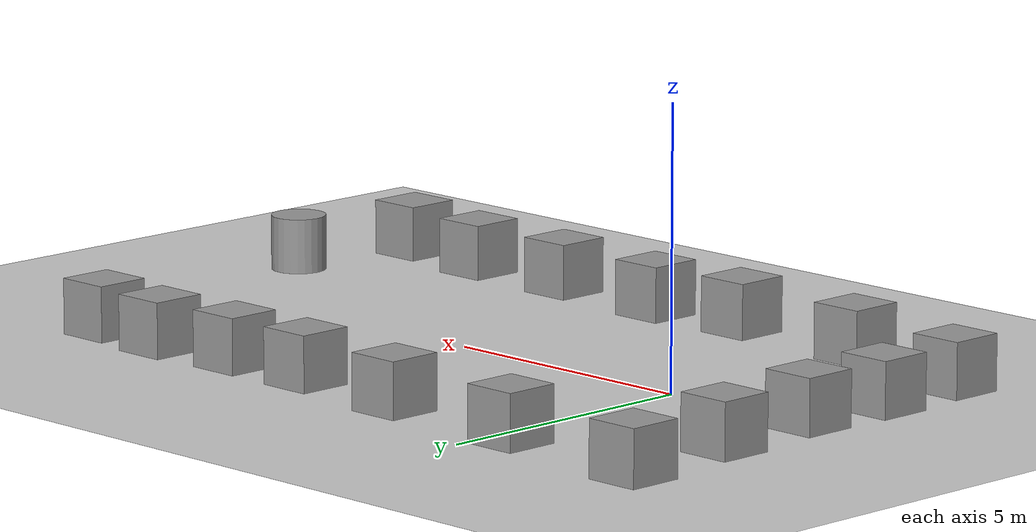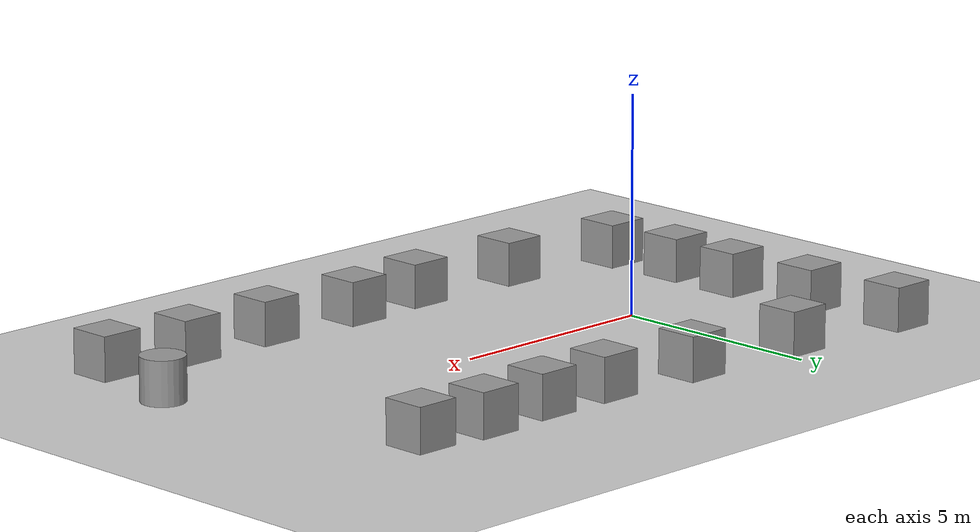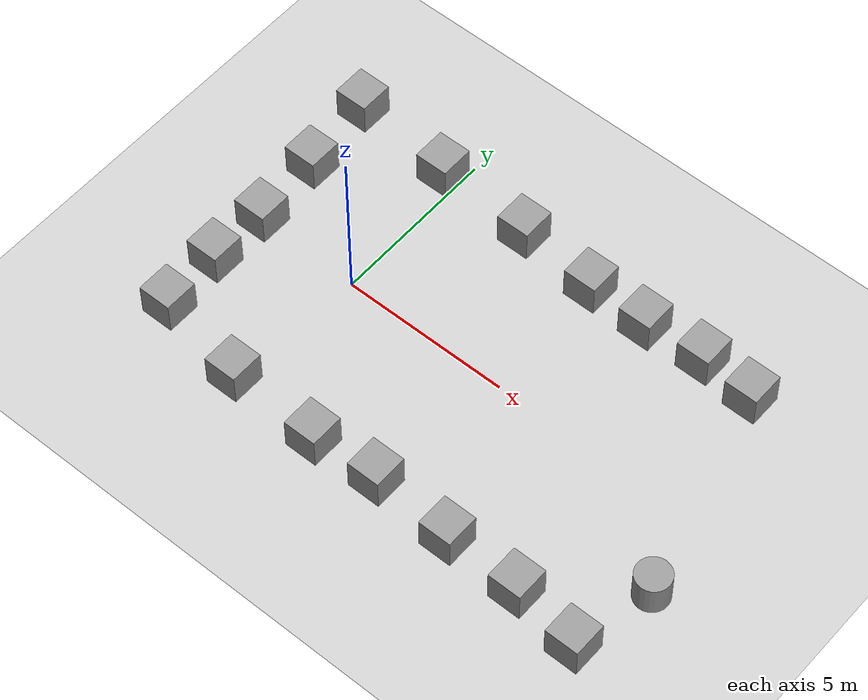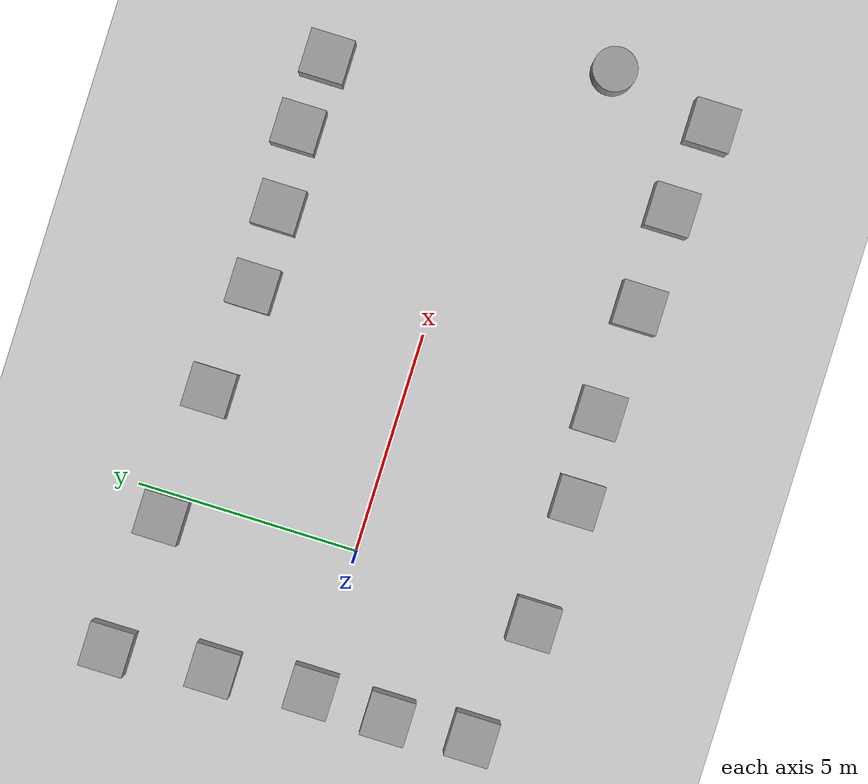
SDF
<sdf version="1.7">
 <world name="default">
  <light name="sun" type="directional">
   <pose>0 0 10 0 -0 0</pose>
   <diffuse>0.8 0.8 0.8 1</diffuse>
   <specular>0.2 0.2 0.2 1</specular>
   <attenuation>
    <range>1000</range>
    <constant>0.9</constant>
    <linear>0.01</linear>
    <quadratic>0.001</quadratic>
   </attenuation>
   <direction>-0.5 0.1 -0.9</direction>
   <spot><inner_angle>0</inner_angle><outer_angle>0</outer_angle><falloff>0</falloff></spot>
  </light>
  <model name="ground_plane">
   <static>1</static>
   <link name="link">
    <collision name="collision">
     <geometry><plane><normal>0 0 1</normal><size>100 100</size></plane></geometry>
     <surface>
      <contact><collide_bitmask>65535</collide_bitmask></contact>
      <friction><ode><mu>100</mu><mu2>50</mu2></ode></friction>
     </surface>
    </collision>
    <visual name="visual">
     <cast_shadows>0</cast_shadows>
     <geometry><plane><normal>0 0 1</normal><size>100 100</size></plane></geometry>
     <material>
      <script><uri>file://media/materials/scripts/gazebo.material</uri><name>Gazebo/Grey</name></script>
     </material>
    </visual>
   </link>
  </model>
  <gravity>0 0 -9.8</gravity>
  <magnetic_field>6e-06 2.3e-05 -4.2e-05</magnetic_field>
  <atmosphere type="adiabatic"/>
  <physics type="ode">
   <max_step_size>0.001</max_step_size>
   <real_time_factor>1</real_time_factor>
   <real_time_update_rate>1000</real_time_update_rate>
  </physics>
  <scene><ambient>0.4 0.4 0.4 1</ambient><background>0.7 0.7 0.7 1</background><shadows>1</shadows></scene>
  <spherical_coordinates>
   <surface_model>EARTH_WGS84</surface_model>
   <latitude_deg>0</latitude_deg>
   <longitude_deg>0</longitude_deg>
   <elevation>0</elevation>
   <heading_deg>0</heading_deg>
  </spherical_coordinates>
  <model name="unit_box_0">
   <pose>2.48487 -4.28376 0.499995 0 1e-05 0</pose>
   <link name="link">
    <inertial>
     <mass>1</mass>
     <inertia>
      <ixx>0.166667</ixx>
      <ixy>0</ixy>
      <ixz>0</ixz>
      <iyy>0.166667</iyy>
      <iyz>0</iyz>
      <izz>0.166667</izz>
     </inertia>
    </inertial>
    <collision name="collision"><geometry><box><size>1 1 1</size></box></geometry></collision>
    <visual name="visual">
     <geometry><box><size>1 1 1</size></box></geometry>
     <material>
      <script><name>Gazebo/Grey</name><uri>file://media/materials/scripts/gazebo.material</uri></script>
     </material>
    </visual>
   </link>
  </model>
  <model name="unit_box_1">
   <pose>4.48088 -4.17094 0.499995 -1e-05 0 0</pose>
   <link name="link">
    <inertial>
     <mass>1</mass>
     <inertia>
      <ixx>0.166667</ixx>
      <ixy>0</ixy>
      <ixz>0</ixz>
      <iyy>0.166667</iyy>
      <iyz>0</iyz>
      <izz>0.166667</izz>
     </inertia>
    </inertial>
    <collision name="collision"><geometry><box><size>1 1 1</size></box></geometry></collision>
    <visual name="visual">
     <geometry><box><size>1 1 1</size></box></geometry>
     <material>
      <script><name>Gazebo/Grey</name><uri>file://media/materials/scripts/gazebo.material</uri></script>
     </material>
    </visual>
   </link>
  </model>
  <model name="unit_box_2">
   <pose>6.93353 -4.32349 0.499995 0 1e-05 0</pose>
   <link name="link">
    <inertial>
     <mass>1</mass>
     <inertia>
      <ixx>0.166667</ixx>
      <ixy>0</ixy>
      <ixz>0</ixz>
      <iyy>0.166667</iyy>
      <iyz>0</iyz>
      <izz>0.166667</izz>
     </inertia>
    </inertial>
    <collision name="collision"><geometry><box><size>1 1 1</size></box></geometry></collision>
    <visual name="visual">
     <geometry><box><size>1 1 1</size></box></geometry>
     <material>
      <script><name>Gazebo/Grey</name><uri>file://media/materials/scripts/gazebo.material</uri></script>
     </material>
    </visual>
   </link>
  </model>
  <model name="unit_box_3">
   <pose>9.17694 -4.36813 0.499995 -1e-05 0 0</pose>
   <link name="link">
    <inertial>
     <mass>1</mass>
     <inertia>
      <ixx>0.166667</ixx>
      <ixy>0</ixy>
      <ixz>0</ixz>
      <iyy>0.166667</iyy>
      <iyz>0</iyz>
      <izz>0.166667</izz>
     </inertia>
    </inertial>
    <collision name="collision"><geometry><box><size>1 1 1</size></box></geometry></collision>
    <visual name="visual">
     <geometry><box><size>1 1 1</size></box></geometry>
     <material>
      <script><name>Gazebo/Grey</name><uri>file://media/materials/scripts/gazebo.material</uri></script>
     </material>
    </visual>
   </link>
  </model>
  <model name="unit_box_5">
   <pose>2.44666 4.08716 0.499995 -1e-05 0 0</pose>
   <link name="link">
    <inertial>
     <mass>1</mass>
     <inertia>
      <ixx>0.166667</ixx>
      <ixy>0</ixy>
      <ixz>0</ixz>
      <iyy>0.166667</iyy>
      <iyz>0</iyz>
      <izz>0.166667</izz>
     </inertia>
    </inertial>
    <collision name="collision"><geometry><box><size>1 1 1</size></box></geometry></collision>
    <visual name="visual">
     <geometry><box><size>1 1 1</size></box></geometry>
     <material>
      <script><name>Gazebo/Grey</name><uri>file://media/materials/scripts/gazebo.material</uri></script>
     </material>
    </visual>
   </link>
  </model>
  <model name="unit_box_6">
   <pose>4.88164 3.85115 0.499995 0 1e-05 0</pose>
   <link name="link">
    <inertial>
     <mass>1</mass>
     <inertia>
      <ixx>0.166667</ixx>
      <ixy>0</ixy>
      <ixz>0</ixz>
      <iyy>0.166667</iyy>
      <iyz>0</iyz>
      <izz>0.166667</izz>
     </inertia>
    </inertial>
    <collision name="collision"><geometry><box><size>1 1 1</size></box></geometry></collision>
    <visual name="visual">
     <geometry><box><size>1 1 1</size></box></geometry>
     <material>
      <script><name>Gazebo/Grey</name><uri>file://media/materials/scripts/gazebo.material</uri></script>
     </material>
    </visual>
   </link>
  </model>
  <model name="unit_box_7">
   <pose>6.69324 3.83162 0.499995 -1e-05 0 0</pose>
   <link name="link">
    <inertial>
     <mass>1</mass>
     <inertia>
      <ixx>0.166667</ixx>
      <ixy>0</ixy>
      <ixz>0</ixz>
      <iyy>0.166667</iyy>
      <iyz>0</iyz>
      <izz>0.166667</izz>
     </inertia>
    </inertial>
    <collision name="collision"><geometry><box><size>1 1 1</size></box></geometry></collision>
    <visual name="visual">
     <geometry><box><size>1 1 1</size></box></geometry>
     <material>
      <script><name>Gazebo/Grey</name><uri>file://media/materials/scripts/gazebo.material</uri></script>
     </material>
    </visual>
   </link>
  </model>
  <model name="unit_box_8">
   <pose>8.49478 3.93996 0.499995 0 1e-05 0</pose>
   <link name="link">
    <inertial>
     <mass>1</mass>
     <inertia>
      <ixx>0.166667</ixx>
      <ixy>0</ixy>
      <ixz>0</ixz>
      <iyy>0.166667</iyy>
      <iyz>0</iyz>
      <izz>0.166667</izz>
     </inertia>
    </inertial>
    <collision name="collision"><geometry><box><size>1 1 1</size></box></geometry></collision>
    <visual name="visual">
     <geometry><box><size>1 1 1</size></box></geometry>
     <material>
      <script><name>Gazebo/Grey</name><uri>file://media/materials/scripts/gazebo.material</uri></script>
     </material>
    </visual>
   </link>
  </model>
  <model name="unit_box_9">
   <pose>10.1286 3.78767 0.499995 -1e-05 0 0</pose>
   <link name="link">
    <inertial>
     <mass>1</mass>
     <inertia>
      <ixx>0.166667</ixx>
      <ixy>0</ixy>
      <ixz>0</ixz>
      <iyy>0.166667</iyy>
      <iyz>0</iyz>
      <izz>0.166667</izz>
     </inertia>
    </inertial>
    <collision name="collision"><geometry><box><size>1 1 1</size></box></geometry></collision>
    <visual name="visual">
     <geometry><box><size>1 1 1</size></box></geometry>
     <material>
      <script><name>Gazebo/Grey</name><uri>file://media/materials/scripts/gazebo.material</uri></script>
     </material>
    </visual>
   </link>
  </model>
  <model name="unit_box_10">
   <pose>-3.11384 -3.61897 0.499995 0 1e-05 0</pose>
   <link name="link">
    <inertial>
     <mass>1</mass>
     <inertia>
      <ixx>0.166667</ixx>
      <ixy>0</ixy>
      <ixz>0</ixz>
      <iyy>0.166667</iyy>
      <iyz>0</iyz>
      <izz>0.166667</izz>
     </inertia>
    </inertial>
    <collision name="collision"><geometry><box><size>1 1 1</size></box></geometry></collision>
    <visual name="visual">
     <geometry><box><size>1 1 1</size></box></geometry>
     <material>
      <script><name>Gazebo/Grey</name><uri>file://media/materials/scripts/gazebo.material</uri></script>
     </material>
    </visual>
   </link>
  </model>
  <model name="unit_box_11">
   <pose>-3.22365 -1.73541 0.499995 -1e-05 0 0</pose>
   <link name="link">
    <inertial>
     <mass>1</mass>
     <inertia>
      <ixx>0.166667</ixx>
      <ixy>0</ixy>
      <ixz>0</ixz>
      <iyy>0.166667</iyy>
      <iyz>0</iyz>
      <izz>0.166667</izz>
     </inertia>
    </inertial>
    <collision name="collision"><geometry><box><size>1 1 1</size></box></geometry></collision>
    <visual name="visual">
     <geometry><box><size>1 1 1</size></box></geometry>
     <material>
      <script><name>Gazebo/Grey</name><uri>file://media/materials/scripts/gazebo.material</uri></script>
     </material>
    </visual>
   </link>
  </model>
  <model name="unit_box_12">
   <pose>-3.17732 0.039914 0.499995 0 1e-05 0</pose>
   <link name="link">
    <inertial>
     <mass>1</mass>
     <inertia>
      <ixx>0.166667</ixx>
      <ixy>0</ixy>
      <ixz>0</ixz>
      <iyy>0.166667</iyy>
      <iyz>0</iyz>
      <izz>0.166667</izz>
     </inertia>
    </inertial>
    <collision name="collision"><geometry><box><size>1 1 1</size></box></geometry></collision>
    <visual name="visual">
     <geometry><box><size>1 1 1</size></box></geometry>
     <material>
      <script><name>Gazebo/Grey</name><uri>file://media/materials/scripts/gazebo.material</uri></script>
     </material>
    </visual>
   </link>
  </model>
  <model name="unit_box_13">
   <pose>-3.34975 2.21128 0.499995 -1e-05 0 0</pose>
   <link name="link">
    <inertial>
     <mass>1</mass>
     <inertia>
      <ixx>0.166667</ixx>
      <ixy>0</ixy>
      <ixz>0</ixz>
      <iyy>0.166667</iyy>
      <iyz>0</iyz>
      <izz>0.166667</izz>
     </inertia>
    </inertial>
    <collision name="collision"><geometry><box><size>1 1 1</size></box></geometry></collision>
    <visual name="visual">
     <geometry><box><size>1 1 1</size></box></geometry>
     <material>
      <script><name>Gazebo/Grey</name><uri>file://media/materials/scripts/gazebo.material</uri></script>
     </material>
    </visual>
   </link>
  </model>
  <model name="unit_box_14">
   <pose>-3.59104 4.54813 0.499995 0 1e-05 0</pose>
   <link name="link">
    <inertial>
     <mass>1</mass>
     <inertia>
      <ixx>0.166667</ixx>
      <ixy>0</ixy>
      <ixz>0</ixz>
      <iyy>0.166667</iyy>
      <iyz>0</iyz>
      <izz>0.166667</izz>
     </inertia>
    </inertial>
    <collision name="collision"><geometry><box><size>1 1 1</size></box></geometry></collision>
    <visual name="visual">
     <geometry><box><size>1 1 1</size></box></geometry>
     <material>
      <script><name>Gazebo/Grey</name><uri>file://media/materials/scripts/gazebo.material</uri></script>
     </material>
    </visual>
   </link>
  </model>
  <model name="unit_box_4">
   <pose>-0.511571 4.27164 0.499995 0 1e-05 0</pose>
   <link name="link">
    <inertial>
     <mass>1</mass>
     <inertia>
      <ixx>0.166667</ixx>
      <ixy>0</ixy>
      <ixz>0</ixz>
      <iyy>0.166667</iyy>
      <iyz>0</iyz>
      <izz>0.166667</izz>
     </inertia>
    </inertial>
    <collision name="collision"><geometry><box><size>1 1 1</size></box></geometry></collision>
    <visual name="visual">
     <geometry><box><size>1 1 1</size></box></geometry>
     <material>
      <script><name>Gazebo/Grey</name><uri>file://media/materials/scripts/gazebo.material</uri></script>
     </material>
    </visual>
   </link>
  </model>
  <model name="unit_box">
   <pose>-0.328998 -4.16313 0.499995 -1e-05 -0 -0</pose>
   <link name="link">
    <inertial>
     <mass>1</mass>
     <inertia>
      <ixx>0.166667</ixx>
      <ixy>0</ixy>
      <ixz>0</ixz>
      <iyy>0.166667</iyy>
      <iyz>0</iyz>
      <izz>0.166667</izz>
     </inertia>
    </inertial>
    <collision name="collision"><geometry><box><size>1 1 1</size></box></geometry></collision>
    <visual name="visual">
     <geometry><box><size>1 1 1</size></box></geometry>
     <material>
      <script><name>Gazebo/Grey</name><uri>file://media/materials/scripts/gazebo.material</uri></script>
     </material>
    </visual>
   </link>
  </model>
  <model name="unit_box_15">
   <pose>11.1823 -4.65796 0.499995 0 1e-05 0</pose>
   <link name="link">
    <inertial>
     <mass>1</mass>
     <inertia>
      <ixx>0.166667</ixx>
      <ixy>0</ixy>
      <ixz>0</ixz>
      <iyy>0.166667</iyy>
      <iyz>0</iyz>
      <izz>0.166667</izz>
     </inertia>
    </inertial>
    <collision name="collision"><geometry><box><size>1 1 1</size></box></geometry></collision>
    <visual name="visual">
     <geometry><box><size>1 1 1</size></box></geometry>
     <material>
      <script><name>Gazebo/Grey</name><uri>file://media/materials/scripts/gazebo.material</uri></script>
     </material>
    </visual>
   </link>
  </model>
  <model name="unit_cylinder">
   <pose>11.713 -2.27105 0.499997 3e-06 4e-06 -0</pose>
   <link name="link">
    <inertial>
     <mass>1</mass>
     <inertia><ixx>0.145833</ixx><ixy>0</ixy><ixz>0</ixz><iyy>0.145833</iyy><iyz>0</iyz><izz>0.125</izz></inertia>
    </inertial>
    <collision name="collision">
     <geometry><cylinder><radius>0.5</radius><length>1</length></cylinder></geometry>
    </collision>
    <visual name="visual">
     <geometry><cylinder><radius>0.5</radius><length>1</length></cylinder></geometry>
     <material>
      <script><name>Gazebo/Grey</name><uri>file://media/materials/scripts/gazebo.material</uri></script>
     </material>
    </visual>
   </link>
  </model>
 </world>
</sdf>
